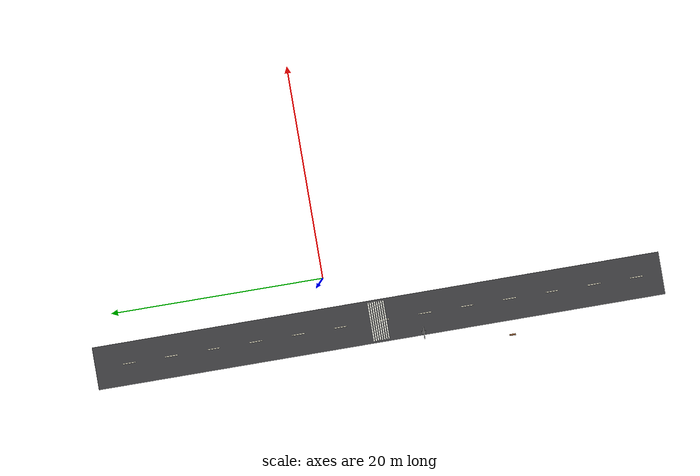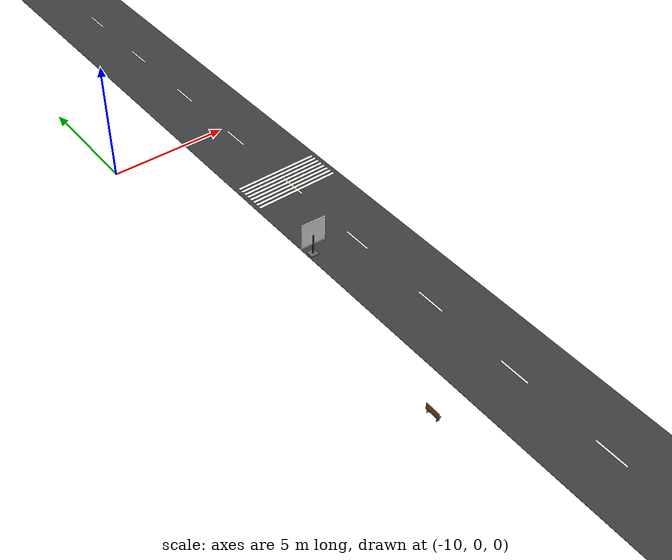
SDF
<sdf version="1.10">
 <world name="city_town_real_improved">
  <model name="road_central_northsouth">
   <static>true</static>
   <pose>-4.79999389648438 -4.47619018554688 0 0 0 1.57080003571763</pose>
   <link name="link">
    <collision name="road_col">
     <pose>0 0 0.004 0 0 0</pose>
     <geometry><box><size>53.6 4 0.008</size></box></geometry>
    </collision>
    <visual name="road_vis">
     <pose>0 0 0.004 0 0 0</pose>
     <geometry><box><size>53.6 4 0.008</size></box></geometry>
     <material>
      <ambient>0.230000004 0.230000004 0.239999995 1</ambient>
      <diffuse>0.230000004 0.230000004 0.239999995 1</diffuse>
      <specular>0.0799999982 0.0799999982 0.0799999982 1</specular>
     </material>
    </visual>
    <visual name="dash0_vis">
     <pose>-24.4 0 0.0088 0 0 0</pose>
     <geometry><box><size>1.2 0.072 0.004</size></box></geometry>
     <material>
      <ambient>0.959999979 0.939999998 0.829999983 1</ambient>
      <diffuse>0.959999979 0.939999998 0.829999983 1</diffuse>
      <specular>0.0799999982 0.0799999982 0.0799999982 1</specular>
     </material>
    </visual>
    <visual name="dash1_vis">
     <pose>-20.4 0 0.0088 0 0 0</pose>
     <geometry><box><size>1.2 0.072 0.004</size></box></geometry>
     <material>
      <ambient>0.959999979 0.939999998 0.829999983 1</ambient>
      <diffuse>0.959999979 0.939999998 0.829999983 1</diffuse>
      <specular>0.0799999982 0.0799999982 0.0799999982 1</specular>
     </material>
    </visual>
    <visual name="dash2_vis">
     <pose>-16.4 0 0.0088 0 0 0</pose>
     <geometry><box><size>1.2 0.072 0.004</size></box></geometry>
     <material>
      <ambient>0.959999979 0.939999998 0.829999983 1</ambient>
      <diffuse>0.959999979 0.939999998 0.829999983 1</diffuse>
      <specular>0.0799999982 0.0799999982 0.0799999982 1</specular>
     </material>
    </visual>
    <visual name="dash3_vis">
     <pose>-12.4 0 0.0088 0 0 0</pose>
     <geometry><box><size>1.2 0.072 0.004</size></box></geometry>
     <material>
      <ambient>0.959999979 0.939999998 0.829999983 1</ambient>
      <diffuse>0.959999979 0.939999998 0.829999983 1</diffuse>
      <specular>0.0799999982 0.0799999982 0.0799999982 1</specular>
     </material>
    </visual>
    <visual name="dash4_vis">
     <pose>-8.4 0 0.0088 0 0 0</pose>
     <geometry><box><size>1.2 0.072 0.004</size></box></geometry>
     <material>
      <ambient>0.959999979 0.939999998 0.829999983 1</ambient>
      <diffuse>0.959999979 0.939999998 0.829999983 1</diffuse>
      <specular>0.0799999982 0.0799999982 0.0799999982 1</specular>
     </material>
    </visual>
    <visual name="dash5_vis">
     <pose>-4.4 0 0.0088 0 0 0</pose>
     <geometry><box><size>1.2 0.072 0.004</size></box></geometry>
     <material>
      <ambient>0.959999979 0.939999998 0.829999983 1</ambient>
      <diffuse>0.959999979 0.939999998 0.829999983 1</diffuse>
      <specular>0.0799999982 0.0799999982 0.0799999982 1</specular>
     </material>
    </visual>
    <visual name="dash6_vis">
     <pose>-0.4 0 0.0088 0 0 0</pose>
     <geometry><box><size>1.2 0.072 0.004</size></box></geometry>
     <material>
      <ambient>0.959999979 0.939999998 0.829999983 1</ambient>
      <diffuse>0.959999979 0.939999998 0.829999983 1</diffuse>
      <specular>0.0799999982 0.0799999982 0.0799999982 1</specular>
     </material>
    </visual>
    <visual name="dash7_vis">
     <pose>3.6 0 0.0088 0 0 0</pose>
     <geometry><box><size>1.2 0.072 0.004</size></box></geometry>
     <material>
      <ambient>0.959999979 0.939999998 0.829999983 1</ambient>
      <diffuse>0.959999979 0.939999998 0.829999983 1</diffuse>
      <specular>0.0799999982 0.0799999982 0.0799999982 1</specular>
     </material>
    </visual>
    <visual name="dash8_vis">
     <pose>7.6 0 0.0088 0 0 0</pose>
     <geometry><box><size>1.2 0.072 0.004</size></box></geometry>
     <material>
      <ambient>0.959999979 0.939999998 0.829999983 1</ambient>
      <diffuse>0.959999979 0.939999998 0.829999983 1</diffuse>
      <specular>0.0799999982 0.0799999982 0.0799999982 1</specular>
     </material>
    </visual>
    <visual name="dash9_vis">
     <pose>11.6 0 0.0088 0 0 0</pose>
     <geometry><box><size>1.2 0.072 0.004</size></box></geometry>
     <material>
      <ambient>0.959999979 0.939999998 0.829999983 1</ambient>
      <diffuse>0.959999979 0.939999998 0.829999983 1</diffuse>
      <specular>0.0799999982 0.0799999982 0.0799999982 1</specular>
     </material>
    </visual>
    <visual name="dash10_vis">
     <pose>15.6 0 0.0088 0 0 0</pose>
     <geometry><box><size>1.2 0.072 0.004</size></box></geometry>
     <material>
      <ambient>0.959999979 0.939999998 0.829999983 1</ambient>
      <diffuse>0.959999979 0.939999998 0.829999983 1</diffuse>
      <specular>0.0799999982 0.0799999982 0.0799999982 1</specular>
     </material>
    </visual>
    <visual name="dash11_vis">
     <pose>19.6 0 0.0088 0 0 0</pose>
     <geometry><box><size>1.2 0.072 0.004</size></box></geometry>
     <material>
      <ambient>0.959999979 0.939999998 0.829999983 1</ambient>
      <diffuse>0.959999979 0.939999998 0.829999983 1</diffuse>
      <specular>0.0799999982 0.0799999982 0.0799999982 1</specular>
     </material>
    </visual>
    <visual name="dash12_vis">
     <pose>23.6 0 0.0088 0 0 0</pose>
     <geometry><box><size>1.2 0.072 0.004</size></box></geometry>
     <material>
      <ambient>0.959999979 0.939999998 0.829999983 1</ambient>
      <diffuse>0.959999979 0.939999998 0.829999983 1</diffuse>
      <specular>0.0799999982 0.0799999982 0.0799999982 1</specular>
     </material>
    </visual>
    <visual name="cw0_vis">
     <pose>-0.7 0 0.0088 0 0 0</pose>
     <geometry><box><size>0.112 3.64 0.0048</size></box></geometry>
     <material>
      <ambient>0.959999979 0.959999979 0.920000017 1</ambient>
      <diffuse>0.959999979 0.959999979 0.920000017 1</diffuse>
      <specular>0.0799999982 0.0799999982 0.0799999982 1</specular>
     </material>
    </visual>
    <visual name="cw1_vis">
     <pose>-0.5 0 0.0088 0 0 0</pose>
     <geometry><box><size>0.112 3.64 0.0048</size></box></geometry>
     <material>
      <ambient>0.959999979 0.959999979 0.920000017 1</ambient>
      <diffuse>0.959999979 0.959999979 0.920000017 1</diffuse>
      <specular>0.0799999982 0.0799999982 0.0799999982 1</specular>
     </material>
    </visual>
    <visual name="cw2_vis">
     <pose>-0.3 0 0.0088 0 0 0</pose>
     <geometry><box><size>0.112 3.64 0.0048</size></box></geometry>
     <material>
      <ambient>0.959999979 0.959999979 0.920000017 1</ambient>
      <diffuse>0.959999979 0.959999979 0.920000017 1</diffuse>
      <specular>0.0799999982 0.0799999982 0.0799999982 1</specular>
     </material>
    </visual>
    <visual name="cw3_vis">
     <pose>-0.1 0 0.0088 0 0 0</pose>
     <geometry><box><size>0.112 3.64 0.0048</size></box></geometry>
     <material>
      <ambient>0.959999979 0.959999979 0.920000017 1</ambient>
      <diffuse>0.959999979 0.959999979 0.920000017 1</diffuse>
      <specular>0.0799999982 0.0799999982 0.0799999982 1</specular>
     </material>
    </visual>
    <visual name="cw4_vis">
     <pose>0.1 0 0.0088 0 0 0</pose>
     <geometry><box><size>0.112 3.64 0.0048</size></box></geometry>
     <material>
      <ambient>0.959999979 0.959999979 0.920000017 1</ambient>
      <diffuse>0.959999979 0.959999979 0.920000017 1</diffuse>
      <specular>0.0799999982 0.0799999982 0.0799999982 1</specular>
     </material>
    </visual>
    <visual name="cw5_vis">
     <pose>0.3 0 0.0088 0 0 0</pose>
     <geometry><box><size>0.112 3.64 0.0048</size></box></geometry>
     <material>
      <ambient>0.959999979 0.959999979 0.920000017 1</ambient>
      <diffuse>0.959999979 0.959999979 0.920000017 1</diffuse>
      <specular>0.0799999982 0.0799999982 0.0799999982 1</specular>
     </material>
    </visual>
    <visual name="cw6_vis">
     <pose>0.5 0 0.0088 0 0 0</pose>
     <geometry><box><size>0.112 3.64 0.0048</size></box></geometry>
     <material>
      <ambient>0.959999979 0.959999979 0.920000017 1</ambient>
      <diffuse>0.959999979 0.959999979 0.920000017 1</diffuse>
      <specular>0.0799999982 0.0799999982 0.0799999982 1</specular>
     </material>
    </visual>
    <visual name="cw7_vis">
     <pose>0.7 0 0.0088 0 0 0</pose>
     <geometry><box><size>0.112 3.64 0.0048</size></box></geometry>
     <material>
      <ambient>0.959999979 0.959999979 0.920000017 1</ambient>
      <diffuse>0.959999979 0.959999979 0.920000017 1</diffuse>
      <specular>0.0799999982 0.0799999982 0.0799999982 1</specular>
     </material>
    </visual>
    <inertial>
     <mass>1</mass>
     <inertia><ixx>1</ixx><ixy>0</ixy><ixz>0</ixz><iyy>1</iyy><iyz>0</iyz><izz>1</izz></inertia>
    </inertial>
   </link>
  </model>
  <model name="supermarket_qr_sign">
   <static>true</static>
   <pose>-6.56469955444336 -8.45673599243164 0 0 0 3.08768999878715</pose>
   <link name="link">
    <collision name="post_col">
     <pose>0 0 0.46 0 0 0</pose>
     <geometry><box><size>0.056 0.056 0.92</size></box></geometry>
    </collision>
    <visual name="post_vis">
     <pose>0 0 0.46 0 0 0</pose>
     <geometry><box><size>0.056 0.056 0.92</size></box></geometry>
     <material>
      <ambient>0.239999995 0.239999995 0.239999995 1</ambient>
      <diffuse>0.239999995 0.239999995 0.239999995 1</diffuse>
      <specular>0.0799999982 0.0799999982 0.0799999982 1</specular>
     </material>
    </visual>
    <collision name="base_col">
     <pose>0 0 0.024 0 0 0</pose>
     <geometry><box><size>0.34 0.34 0.048</size></box></geometry>
    </collision>
    <visual name="base_vis">
     <pose>0 0 0.024 0 0 0</pose>
     <geometry><box><size>0.34 0.34 0.048</size></box></geometry>
     <material>
      <ambient>0.379999995 0.379999995 0.379999995 1</ambient>
      <diffuse>0.379999995 0.379999995 0.379999995 1</diffuse>
      <specular>0.0799999982 0.0799999982 0.0799999982 1</specular>
     </material>
    </visual>
    <visual name="back_vis">
     <pose>0 0 0.48 0 0 0</pose>
     <geometry><box><size>1.1 0.024 0.06</size></box></geometry>
     <material>
      <ambient>0.920000017 0.920000017 0.920000017 1</ambient>
      <diffuse>0.920000017 0.920000017 0.920000017 1</diffuse>
      <specular>0.0500000007 0.0500000007 0.0500000007 1</specular>
     </material>
    </visual>
    <visual name="qr_vis">
     <pose>0 0 1.06 0 0 0</pose>
     <geometry><box><size>1.04 0.04 1.04</size></box></geometry>
     <material>
      <ambient>1 1 1 1</ambient>
      <diffuse>1 1 1 1</diffuse>
      <specular>0.0500000007 0.0500000007 0.0500000007 1</specular>
      <pbr>
       <metal>
        <albedo_map>qr_codes/SUPERMARKET.png</albedo_map>
        <metalness>0.0</metalness>
        <roughness>1.0</roughness>
       </metal>
      </pbr>
     </material>
    </visual>
    <inertial>
     <mass>1</mass>
     <inertia><ixx>1</ixx><ixy>0</ixy><ixz>0</ixz><iyy>1</iyy><iyz>0</iyz><izz>1</izz></inertia>
    </inertial>
   </link>
  </model>
  <model name="bench_1_2">
   <static>true</static>
   <pose>-8.13766636169757 -16.5959256699557 0 0 0 -1.57385998235563</pose>
   <link name="link">
    <visual name="seat">
     <pose>0 0 0.18 0 0 0</pose>
     <geometry><box><size>0.56 0.14 0.032</size></box></geometry>
     <material>
      <ambient>0.550000012 0.349999994 0.200000003 1</ambient>
      <diffuse>0.550000012 0.349999994 0.200000003 1</diffuse>
      <specular>0.0799999982 0.0799999982 0.0799999982 1</specular>
     </material>
    </visual>
    <visual name="back">
     <pose>0 -0.048 0.3 0 0 0</pose>
     <geometry><box><size>0.56 0.032 0.22</size></box></geometry>
     <material>
      <ambient>0.550000012 0.349999994 0.200000003 1</ambient>
      <diffuse>0.550000012 0.349999994 0.200000003 1</diffuse>
      <specular>0.0799999982 0.0799999982 0.0799999982 1</specular>
     </material>
    </visual>
    <visual name="leg1">
     <pose>-0.22 0 0.088 0 0 0</pose>
     <geometry><box><size>0.032 0.112 0.176</size></box></geometry>
     <material>
      <ambient>0.180000007 0.180000007 0.180000007 1</ambient>
      <diffuse>0.180000007 0.180000007 0.180000007 1</diffuse>
      <specular>0.0799999982 0.0799999982 0.0799999982 1</specular>
     </material>
    </visual>
    <visual name="leg2">
     <pose>0.22 0 0.088 0 0 0</pose>
     <geometry><box><size>0.032 0.112 0.176</size></box></geometry>
     <material>
      <ambient>0.180000007 0.180000007 0.180000007 1</ambient>
      <diffuse>0.180000007 0.180000007 0.180000007 1</diffuse>
      <specular>0.0799999982 0.0799999982 0.0799999982 1</specular>
     </material>
    </visual>
    <inertial>
     <mass>1</mass>
     <inertia><ixx>1</ixx><ixy>0</ixy><ixz>0</ixz><iyy>1</iyy><iyz>0</iyz><izz>1</izz></inertia>
    </inertial>
   </link>
  </model>
 </world>
</sdf>
